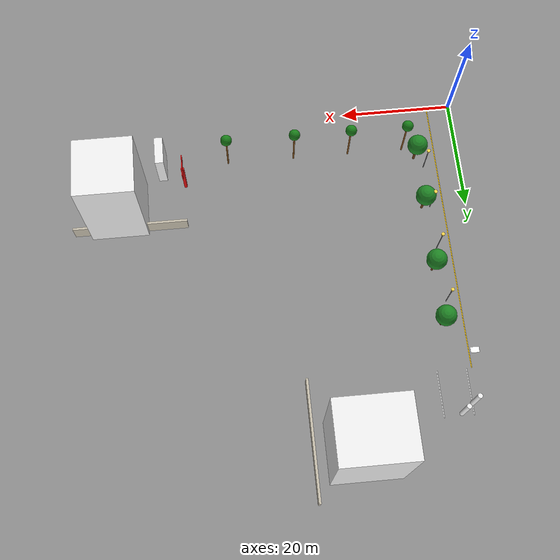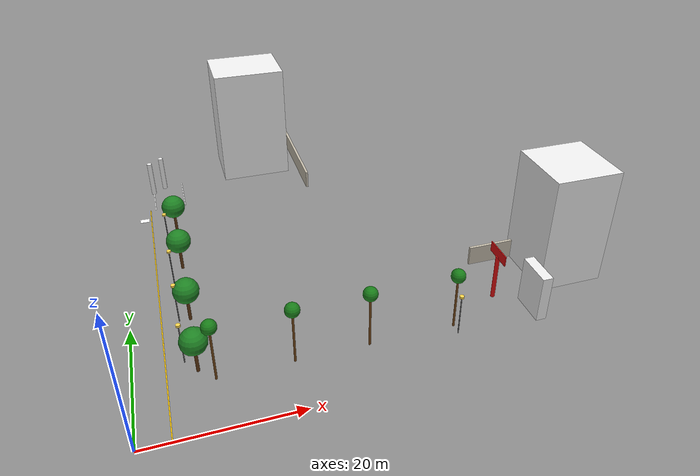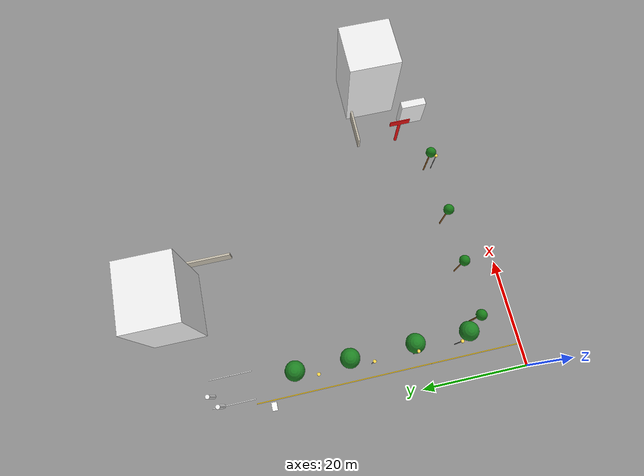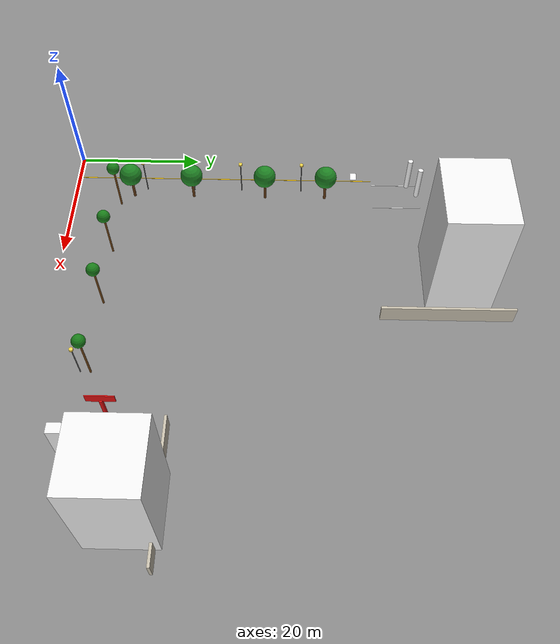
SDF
<sdf version="1.6">
 <world name="srm_campus">
  <model name="el_NR">
   <static>true</static>
   <pose>4.1 25 0.065 0 0 0</pose>
   <link name="l">
    <collision name="c"><geometry><box><size>0.15 50 0.01</size></box></geometry></collision>
    <visual name="v">
     <geometry><box><size>0.15 50 0.01</size></box></geometry>
     <material><ambient>0.95 0.75 0.0 1</ambient><diffuse>0.95 0.75 0.0 1</diffuse></material>
    </visual>
   </link>
  </model>
  <model name="zeb_ist_4">
   <static>true</static>
   <pose>3 47 0.07 0 0 0</pose>
   <link name="l">
    <collision name="c"><geometry><box><size>1.5 1.0 0.01</size></box></geometry></collision>
    <visual name="v">
     <geometry><box><size>1.5 1.0 0.01</size></box></geometry>
     <material><ambient>1 1 1 1</ambient><diffuse>1 1 1 1</diffuse></material>
    </visual>
   </link>
  </model>
  <model name="sl_nr1">
   <static>true</static>
   <pose>6.5 12 3 0 0 0</pose>
   <link name="l">
    <collision name="c">
     <geometry><cylinder><radius>0.08</radius><length>6</length></cylinder></geometry>
    </collision>
    <visual name="trunk">
     <geometry><cylinder><radius>0.08</radius><length>6</length></cylinder></geometry>
     <material><ambient>0.4 0.4 0.4 1</ambient><diffuse>0.4 0.4 0.4 1</diffuse></material>
    </visual>
   </link>
  </model>
  <model name="sl_nr1h">
   <static>true</static>
   <pose>6.5 12 6.2 0 0 0</pose>
   <link name="l">
    <collision name="c">
     <geometry><cylinder><radius>0.3</radius><length>0.3</length></cylinder></geometry>
    </collision>
    <visual name="v">
     <geometry><cylinder><radius>0.3</radius><length>0.3</length></cylinder></geometry>
     <material><ambient>0.95 0.75 0.2 1</ambient><diffuse>1.0 0.85 0.3 1</diffuse></material>
    </visual>
   </link>
  </model>
  <model name="sl_nr2">
   <static>true</static>
   <pose>6.5 20 3 0 0 0</pose>
   <link name="l">
    <collision name="c">
     <geometry><cylinder><radius>0.08</radius><length>6</length></cylinder></geometry>
    </collision>
    <visual name="trunk">
     <geometry><cylinder><radius>0.08</radius><length>6</length></cylinder></geometry>
     <material><ambient>0.4 0.4 0.4 1</ambient><diffuse>0.4 0.4 0.4 1</diffuse></material>
    </visual>
   </link>
  </model>
  <model name="sl_nr2h">
   <static>true</static>
   <pose>6.5 20 6.2 0 0 0</pose>
   <link name="l">
    <collision name="c">
     <geometry><cylinder><radius>0.3</radius><length>0.3</length></cylinder></geometry>
    </collision>
    <visual name="v">
     <geometry><cylinder><radius>0.3</radius><length>0.3</length></cylinder></geometry>
     <material><ambient>0.95 0.75 0.2 1</ambient><diffuse>1.0 0.85 0.3 1</diffuse></material>
    </visual>
   </link>
  </model>
  <model name="sl_nr3">
   <static>true</static>
   <pose>6.5 28 3 0 0 0</pose>
   <link name="l">
    <collision name="c">
     <geometry><cylinder><radius>0.08</radius><length>6</length></cylinder></geometry>
    </collision>
    <visual name="trunk">
     <geometry><cylinder><radius>0.08</radius><length>6</length></cylinder></geometry>
     <material><ambient>0.4 0.4 0.4 1</ambient><diffuse>0.4 0.4 0.4 1</diffuse></material>
    </visual>
   </link>
  </model>
  <model name="sl_nr3h">
   <static>true</static>
   <pose>6.5 28 6.2 0 0 0</pose>
   <link name="l">
    <collision name="c">
     <geometry><cylinder><radius>0.3</radius><length>0.3</length></cylinder></geometry>
    </collision>
    <visual name="v">
     <geometry><cylinder><radius>0.3</radius><length>0.3</length></cylinder></geometry>
     <material><ambient>0.95 0.75 0.2 1</ambient><diffuse>1.0 0.85 0.3 1</diffuse></material>
    </visual>
   </link>
  </model>
  <model name="sl_nr4">
   <static>true</static>
   <pose>6.5 38 3 0 0 0</pose>
   <link name="l">
    <collision name="c">
     <geometry><cylinder><radius>0.08</radius><length>6</length></cylinder></geometry>
    </collision>
    <visual name="trunk">
     <geometry><cylinder><radius>0.08</radius><length>6</length></cylinder></geometry>
     <material><ambient>0.4 0.4 0.4 1</ambient><diffuse>0.4 0.4 0.4 1</diffuse></material>
    </visual>
   </link>
  </model>
  <model name="sl_nr4h">
   <static>true</static>
   <pose>6.5 38 6.2 0 0 0</pose>
   <link name="l">
    <collision name="c">
     <geometry><cylinder><radius>0.3</radius><length>0.3</length></cylinder></geometry>
    </collision>
    <visual name="v">
     <geometry><cylinder><radius>0.3</radius><length>0.3</length></cylinder></geometry>
     <material><ambient>0.95 0.75 0.2 1</ambient><diffuse>1.0 0.85 0.3 1</diffuse></material>
    </visual>
   </link>
  </model>
  <model name="sl_et4">
   <static>true</static>
   <pose>42 6.5 3 0 0 0</pose>
   <link name="l">
    <collision name="c">
     <geometry><cylinder><radius>0.08</radius><length>6</length></cylinder></geometry>
    </collision>
    <visual name="trunk">
     <geometry><cylinder><radius>0.08</radius><length>6</length></cylinder></geometry>
     <material><ambient>0.4 0.4 0.4 1</ambient><diffuse>0.4 0.4 0.4 1</diffuse></material>
    </visual>
   </link>
  </model>
  <model name="sl_et4h">
   <static>true</static>
   <pose>42 6.5 6.2 0 0 0</pose>
   <link name="l">
    <collision name="c">
     <geometry><cylinder><radius>0.3</radius><length>0.3</length></cylinder></geometry>
    </collision>
    <visual name="v">
     <geometry><cylinder><radius>0.3</radius><length>0.3</length></cylinder></geometry>
     <material><ambient>0.95 0.75 0.2 1</ambient><diffuse>1.0 0.85 0.3 1</diffuse></material>
    </visual>
   </link>
  </model>
  <model name="st_nr1">
   <static>true</static>
   <pose>8 10 2 0 0 0</pose>
   <link name="l">
    <collision name="c">
     <geometry><cylinder><radius>0.22</radius><length>4</length></cylinder></geometry>
    </collision>
    <visual name="v">
     <geometry><cylinder><radius>0.22</radius><length>4</length></cylinder></geometry>
     <material><ambient>0.38 0.22 0.08 1</ambient><diffuse>0.38 0.22 0.08 1</diffuse></material>
    </visual>
   </link>
  </model>
  <model name="st_nr1t">
   <static>true</static>
   <pose>8 10 5 0 0 0</pose>
   <link name="l">
    <collision name="c"><geometry><sphere><radius>1.8</radius></sphere></geometry></collision>
    <visual name="v">
     <geometry><sphere><radius>1.8</radius></sphere></geometry>
     <material><ambient>0.10 0.48 0.12 1</ambient><diffuse>0.12 0.52 0.14 1</diffuse></material>
    </visual>
   </link>
  </model>
  <model name="st_nr2">
   <static>true</static>
   <pose>8 20 2 0 0 0</pose>
   <link name="l">
    <collision name="c">
     <geometry><cylinder><radius>0.22</radius><length>4</length></cylinder></geometry>
    </collision>
    <visual name="v">
     <geometry><cylinder><radius>0.22</radius><length>4</length></cylinder></geometry>
     <material><ambient>0.38 0.22 0.08 1</ambient><diffuse>0.38 0.22 0.08 1</diffuse></material>
    </visual>
   </link>
  </model>
  <model name="st_nr2t">
   <static>true</static>
   <pose>8 20 5 0 0 0</pose>
   <link name="l">
    <collision name="c"><geometry><sphere><radius>1.8</radius></sphere></geometry></collision>
    <visual name="v">
     <geometry><sphere><radius>1.8</radius></sphere></geometry>
     <material><ambient>0.10 0.48 0.12 1</ambient><diffuse>0.12 0.52 0.14 1</diffuse></material>
    </visual>
   </link>
  </model>
  <model name="st_nr3">
   <static>true</static>
   <pose>8 32 2 0 0 0</pose>
   <link name="l">
    <collision name="c">
     <geometry><cylinder><radius>0.22</radius><length>4</length></cylinder></geometry>
    </collision>
    <visual name="v">
     <geometry><cylinder><radius>0.22</radius><length>4</length></cylinder></geometry>
     <material><ambient>0.38 0.22 0.08 1</ambient><diffuse>0.38 0.22 0.08 1</diffuse></material>
    </visual>
   </link>
  </model>
  <model name="st_nr3t">
   <static>true</static>
   <pose>8 32 5 0 0 0</pose>
   <link name="l">
    <collision name="c"><geometry><sphere><radius>1.8</radius></sphere></geometry></collision>
    <visual name="v">
     <geometry><sphere><radius>1.8</radius></sphere></geometry>
     <material><ambient>0.10 0.48 0.12 1</ambient><diffuse>0.12 0.52 0.14 1</diffuse></material>
    </visual>
   </link>
  </model>
  <model name="st_nr4">
   <static>true</static>
   <pose>8 42 2 0 0 0</pose>
   <link name="l">
    <collision name="c">
     <geometry><cylinder><radius>0.22</radius><length>4</length></cylinder></geometry>
    </collision>
    <visual name="v">
     <geometry><cylinder><radius>0.22</radius><length>4</length></cylinder></geometry>
     <material><ambient>0.38 0.22 0.08 1</ambient><diffuse>0.38 0.22 0.08 1</diffuse></material>
    </visual>
   </link>
  </model>
  <model name="st_nr4t">
   <static>true</static>
   <pose>8 42 5 0 0 0</pose>
   <link name="l">
    <collision name="c"><geometry><sphere><radius>1.8</radius></sphere></geometry></collision>
    <visual name="v">
     <geometry><sphere><radius>1.8</radius></sphere></geometry>
     <material><ambient>0.10 0.48 0.12 1</ambient><diffuse>0.12 0.52 0.14 1</diffuse></material>
    </visual>
   </link>
  </model>
  <model name="pt_et1">
   <static>true</static>
   <pose>10  8 4 0 0 0</pose>
   <link name="l">
    <collision name="c">
     <geometry><cylinder><radius>0.15</radius><length>8</length></cylinder></geometry>
    </collision>
    <visual name="v">
     <geometry><cylinder><radius>0.15</radius><length>8</length></cylinder></geometry>
     <material><ambient>0.45 0.28 0.10 1</ambient><diffuse>0.45 0.28 0.10 1</diffuse></material>
    </visual>
   </link>
  </model>
  <model name="pt_et1t">
   <static>true</static>
   <pose>10  8 8.5 0 0 0</pose>
   <link name="l">
    <collision name="c"><geometry><sphere><radius>1.0</radius></sphere></geometry></collision>
    <visual name="v">
     <geometry><sphere><radius>1.0</radius></sphere></geometry>
     <material><ambient>0.08 0.45 0.08 1</ambient><diffuse>0.10 0.50 0.10 1</diffuse></material>
    </visual>
   </link>
  </model>
  <model name="pt_et2">
   <static>true</static>
   <pose>20  8 4 0 0 0</pose>
   <link name="l">
    <collision name="c">
     <geometry><cylinder><radius>0.15</radius><length>8</length></cylinder></geometry>
    </collision>
    <visual name="v">
     <geometry><cylinder><radius>0.15</radius><length>8</length></cylinder></geometry>
     <material><ambient>0.45 0.28 0.10 1</ambient><diffuse>0.45 0.28 0.10 1</diffuse></material>
    </visual>
   </link>
  </model>
  <model name="pt_et2t">
   <static>true</static>
   <pose>20  8 8.5 0 0 0</pose>
   <link name="l">
    <collision name="c"><geometry><sphere><radius>1.0</radius></sphere></geometry></collision>
    <visual name="v">
     <geometry><sphere><radius>1.0</radius></sphere></geometry>
     <material><ambient>0.08 0.45 0.08 1</ambient><diffuse>0.10 0.50 0.10 1</diffuse></material>
    </visual>
   </link>
  </model>
  <model name="pt_et3">
   <static>true</static>
   <pose>30  8 4 0 0 0</pose>
   <link name="l">
    <collision name="c">
     <geometry><cylinder><radius>0.15</radius><length>8</length></cylinder></geometry>
    </collision>
    <visual name="v">
     <geometry><cylinder><radius>0.15</radius><length>8</length></cylinder></geometry>
     <material><ambient>0.45 0.28 0.10 1</ambient><diffuse>0.45 0.28 0.10 1</diffuse></material>
    </visual>
   </link>
  </model>
  <model name="pt_et3t">
   <static>true</static>
   <pose>30  8 8.5 0 0 0</pose>
   <link name="l">
    <collision name="c"><geometry><sphere><radius>1.0</radius></sphere></geometry></collision>
    <visual name="v">
     <geometry><sphere><radius>1.0</radius></sphere></geometry>
     <material><ambient>0.08 0.45 0.08 1</ambient><diffuse>0.10 0.50 0.10 1</diffuse></material>
    </visual>
   </link>
  </model>
  <model name="pt_et4">
   <static>true</static>
   <pose>42  8 4 0 0 0</pose>
   <link name="l">
    <collision name="c">
     <geometry><cylinder><radius>0.15</radius><length>8</length></cylinder></geometry>
    </collision>
    <visual name="v">
     <geometry><cylinder><radius>0.15</radius><length>8</length></cylinder></geometry>
     <material><ambient>0.45 0.28 0.10 1</ambient><diffuse>0.45 0.28 0.10 1</diffuse></material>
    </visual>
   </link>
  </model>
  <model name="pt_et4t">
   <static>true</static>
   <pose>42  8 8.5 0 0 0</pose>
   <link name="l">
    <collision name="c"><geometry><sphere><radius>1.0</radius></sphere></geometry></collision>
    <visual name="v">
     <geometry><sphere><radius>1.0</radius></sphere></geometry>
     <material><ambient>0.08 0.45 0.08 1</ambient><diffuse>0.10 0.50 0.10 1</diffuse></material>
    </visual>
   </link>
  </model>
  <model name="pll4">
   <static>true</static>
   <pose>5  54 0.08 0 0 0</pose>
   <link name="l">
    <collision name="c"><geometry><box><size>0.15 8 0.01</size></box></geometry></collision>
    <visual name="v">
     <geometry><box><size>0.15 8 0.01</size></box></geometry>
     <material><ambient>0.9 0.9 0.9 1</ambient><diffuse>0.9 0.9 0.9 1</diffuse></material>
    </visual>
   </link>
  </model>
  <model name="pll5">
   <static>true</static>
   <pose>10  54 0.08 0 0 0</pose>
   <link name="l">
    <collision name="c"><geometry><box><size>0.15 8 0.01</size></box></geometry></collision>
    <visual name="v">
     <geometry><box><size>0.15 8 0.01</size></box></geometry>
     <material><ambient>0.9 0.9 0.9 1</ambient><diffuse>0.9 0.9 0.9 1</diffuse></material>
    </visual>
   </link>
  </model>
  <model name="ist_right_wing">
   <static>true</static>
   <pose>24 62 10 0 0 0</pose>
   <link name="link">
    <collision name="col"><geometry><box><size>12 10 20</size></box></geometry></collision>
    <visual name="vis">
     <geometry><box><size>12 10 20</size></box></geometry>
     <material><ambient>0.93 0.93 0.93 1</ambient><diffuse>0.95 0.95 0.95 1</diffuse></material>
    </visual>
   </link>
  </model>
  <model name="ic2">
   <static>true</static>
   <pose>5  56 3 0 0 0</pose>
   <link name="l">
    <collision name="c">
     <geometry><cylinder><radius>0.4</radius><length>6</length></cylinder></geometry>
    </collision>
    <visual name="v">
     <geometry><cylinder><radius>0.4</radius><length>6</length></cylinder></geometry>
     <material><ambient>0.93 0.93 0.93 1</ambient><diffuse>0.95 0.95 0.95 1</diffuse></material>
    </visual>
   </link>
  </model>
  <model name="ic4">
   <static>true</static>
   <pose>7  57.5 3 0 0 0</pose>
   <link name="l">
    <collision name="c">
     <geometry><cylinder><radius>0.4</radius><length>6</length></cylinder></geometry>
    </collision>
    <visual name="v">
     <geometry><cylinder><radius>0.4</radius><length>6</length></cylinder></geometry>
     <material><ambient>0.93 0.93 0.93 1</ambient><diffuse>0.95 0.95 0.95 1</diffuse></material>
    </visual>
   </link>
  </model>
  <model name="ist_bwall_r">
   <static>true</static>
   <pose>32 60 1.5 0 0 0</pose>
   <link name="l">
    <collision name="c"><geometry><box><size>0.4 20 3</size></box></geometry></collision>
    <visual name="v">
     <geometry><box><size>0.4 20 3</size></box></geometry>
     <material><ambient>0.75 0.72 0.65 1</ambient><diffuse>0.78 0.75 0.68 1</diffuse></material>
    </visual>
   </link>
  </model>
  <model name="hosp_wing_n">
   <static>true</static>
   <pose>62 16 9 0 0 0</pose>
   <link name="link">
    <collision name="col"><geometry><box><size>10 10 18</size></box></geometry></collision>
    <visual name="vis">
     <geometry><box><size>10 10 18</size></box></geometry>
     <material><ambient>0.93 0.93 0.93 1</ambient><diffuse>0.95 0.95 0.95 1</diffuse></material>
    </visual>
   </link>
  </model>
  <model name="hg_north">
   <static>true</static>
   <pose>54 8 3.5 0 0 0</pose>
   <link name="link">
    <collision name="col"><geometry><box><size>1.5 5 7</size></box></geometry></collision>
    <visual name="vis">
     <geometry><box><size>1.5 5 7</size></box></geometry>
     <material><ambient>0.93 0.93 0.93 1</ambient><diffuse>0.95 0.95 0.95 1</diffuse></material>
    </visual>
   </link>
  </model>
  <model name="hbw_n">
   <static>true</static>
   <pose>60 20 1.5 0 0 0</pose>
   <link name="l">
    <collision name="c"><geometry><box><size>20 0.4 3</size></box></geometry></collision>
    <visual name="v">
     <geometry><box><size>20 0.4 3</size></box></geometry>
     <material><ambient>0.75 0.72 0.65 1</ambient><diffuse>0.78 0.75 0.68 1</diffuse></material>
    </visual>
   </link>
  </model>
  <model name="marker_hospital">
   <static>true</static>
   <pose>50 12 3.5 0 0 0</pose>
   <link name="link">
    <collision name="col">
     <geometry><cylinder><radius>0.3</radius><length>7</length></cylinder></geometry>
    </collision>
    <visual name="vis">
     <geometry><cylinder><radius>0.3</radius><length>7</length></cylinder></geometry>
     <material><ambient>0.88 0.06 0.06 1</ambient><diffuse>0.88 0.06 0.06 1</diffuse></material>
    </visual>
   </link>
  </model>
  <model name="hosp_sign">
   <static>true</static>
   <pose>50 12 7.5 0 0 0</pose>
   <link name="l">
    <collision name="c"><geometry><box><size>0.15 4 1.5</size></box></geometry></collision>
    <visual name="v">
     <geometry><box><size>0.15 4 1.5</size></box></geometry>
     <material><ambient>0.88 0.06 0.06 1</ambient><diffuse>0.88 0.06 0.06 1</diffuse></material>
    </visual>
   </link>
  </model>
 </world>
</sdf>
